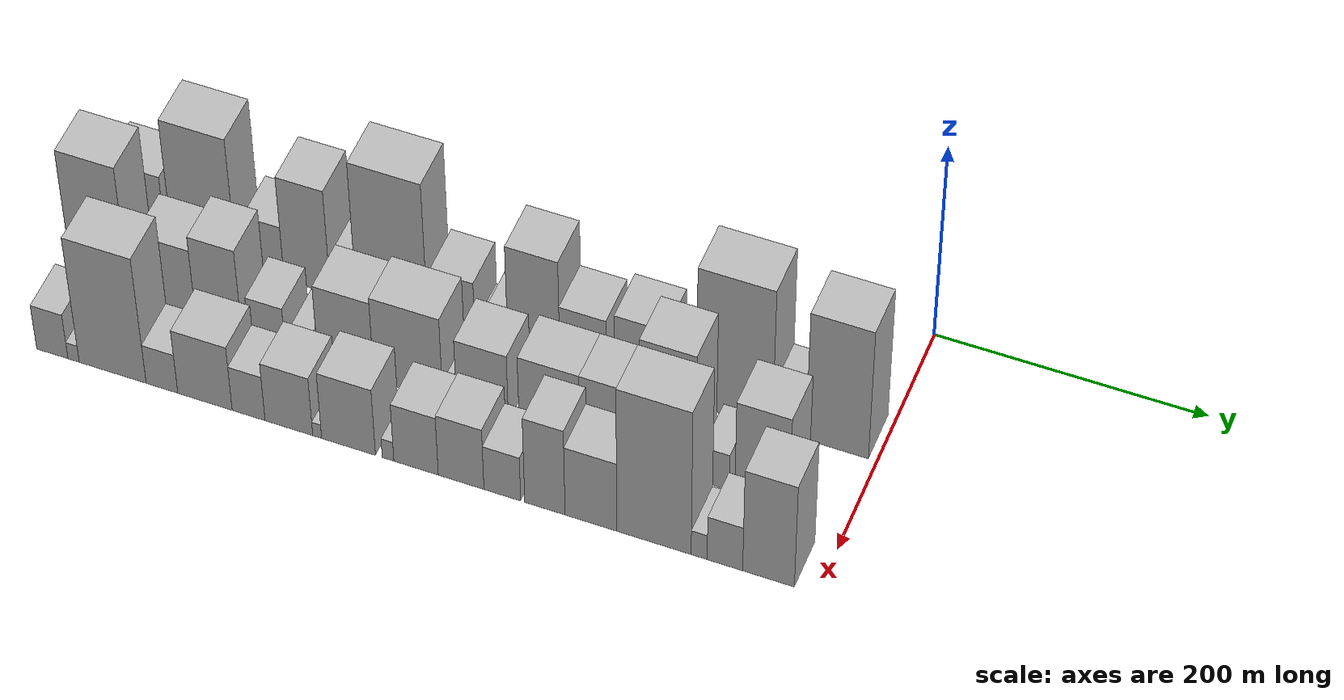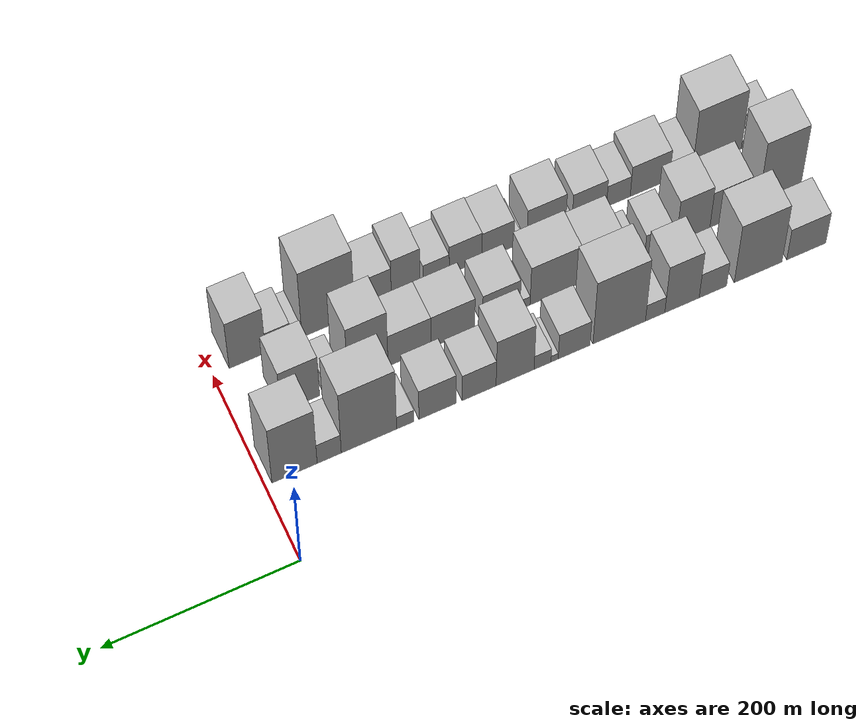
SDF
<sdf version="1.6">
 <world name="default">
  <model name="building_1">
   <static>1</static>
   <pose>100.0000 -556.5266 0 0.000000 0.000000 0.000000</pose>
   <link name="link">
    <pose>0 0 36.00 0 0 0</pose>
    <collision name="collision"><geometry><box><size>40.0000 40.9467 72.0000</size></box></geometry></collision>
    <visual name="visual">
     <cast_shadows>0</cast_shadows>
     <geometry><box><size>40.0000 40.9467 72.0000</size></box></geometry>
     <material>
      <script>
       <uri>model://HANNAS_wall/materials/scripts</uri>
       <uri>model://HANNAS_wall/materials/textures</uri>
       <name>vrc/HANNAS_wall</name>
      </script>
     </material>
    </visual>
   </link>
  </model>
  <model name="building_2">
   <static>1</static>
   <pose>100.0000 -506.0978 0 0.000000 0.000000 0.000000</pose>
   <link name="link">
    <pose>0 0 67.50 0 0 0</pose>
    <collision name="collision"><geometry><box><size>40.0000 49.9109 135.0000</size></box></geometry></collision>
    <visual name="visual">
     <cast_shadows>0</cast_shadows>
     <geometry><box><size>40.0000 49.9109 135.0000</size></box></geometry>
     <material>
      <script>
       <uri>model://HANNAS_wall/materials/scripts</uri>
       <uri>model://HANNAS_wall/materials/textures</uri>
       <name>vrc/HANNAS_wall</name>
      </script>
     </material>
    </visual>
   </link>
  </model>
  <model name="building_3">
   <static>1</static>
   <pose>100.0000 -458.8349 0 0.000000 0.000000 0.000000</pose>
   <link name="link">
    <pose>0 0 28.50 0 0 0</pose>
    <collision name="collision"><geometry><box><size>40.0000 28.6148 57.0000</size></box></geometry></collision>
    <visual name="visual">
     <cast_shadows>0</cast_shadows>
     <geometry><box><size>40.0000 28.6148 57.0000</size></box></geometry>
     <material>
      <script>
       <uri>model://HANNAS_wall/materials/scripts</uri>
       <uri>model://HANNAS_wall/materials/textures</uri>
       <name>vrc/HANNAS_wall</name>
      </script>
     </material>
    </visual>
   </link>
  </model>
  <model name="building_4">
   <static>1</static>
   <pose>100.0000 -426.6664 0 0.000000 0.000000 0.000000</pose>
   <link name="link">
    <pose>0 0 55.50 0 0 0</pose>
    <collision name="collision"><geometry><box><size>40.0000 35.7224 111.0000</size></box></geometry></collision>
    <visual name="visual">
     <cast_shadows>0</cast_shadows>
     <geometry><box><size>40.0000 35.7224 111.0000</size></box></geometry>
     <material>
      <script>
       <uri>model://HANNAS_wall/materials/scripts</uri>
       <uri>model://HANNAS_wall/materials/textures</uri>
       <name>vrc/HANNAS_wall</name>
      </script>
     </material>
    </visual>
   </link>
  </model>
  <model name="building_5">
   <static>1</static>
   <pose>100.0000 -398.7669 0 0.000000 0.000000 0.000000</pose>
   <link name="link">
    <pose>0 0 19.50 0 0 0</pose>
    <collision name="collision"><geometry><box><size>40.0000 20.0766 39.0000</size></box></geometry></collision>
    <visual name="visual">
     <cast_shadows>0</cast_shadows>
     <geometry><box><size>40.0000 20.0766 39.0000</size></box></geometry>
     <material>
      <script>
       <uri>model://HANNAS_wall/materials/scripts</uri>
       <uri>model://HANNAS_wall/materials/textures</uri>
       <name>vrc/HANNAS_wall</name>
      </script>
     </material>
    </visual>
   </link>
  </model>
  <model name="building_6">
   <static>1</static>
   <pose>100.0000 -361.5267 0 0.000000 0.000000 0.000000</pose>
   <link name="link">
    <pose>0 0 75.00 0 0 0</pose>
    <collision name="collision"><geometry><box><size>40.0000 54.4038 150.0000</size></box></geometry></collision>
    <visual name="visual">
     <cast_shadows>0</cast_shadows>
     <geometry><box><size>40.0000 54.4038 150.0000</size></box></geometry>
     <material>
      <script>
       <uri>model://HANNAS_wall/materials/scripts</uri>
       <uri>model://HANNAS_wall/materials/textures</uri>
       <name>vrc/HANNAS_wall</name>
      </script>
     </material>
    </visual>
   </link>
  </model>
  <model name="building_7">
   <static>1</static>
   <pose>100.0000 -314.9015 0 0.000000 0.000000 0.000000</pose>
   <link name="link">
    <pose>0 0 30.00 0 0 0</pose>
    <collision name="collision"><geometry><box><size>40.0000 32.8466 60.0000</size></box></geometry></collision>
    <visual name="visual">
     <cast_shadows>0</cast_shadows>
     <geometry><box><size>40.0000 32.8466 60.0000</size></box></geometry>
     <material>
      <script>
       <uri>model://HANNAS_wall/materials/scripts</uri>
       <uri>model://HANNAS_wall/materials/textures</uri>
       <name>vrc/HANNAS_wall</name>
      </script>
     </material>
    </visual>
   </link>
  </model>
  <model name="building_8">
   <static>1</static>
   <pose>100.0000 -294.7774 0 0.000000 0.000000 0.000000</pose>
   <link name="link">
    <pose>0 0 7.50 0 0 0</pose>
    <collision name="collision"><geometry><box><size>40.0000 7.4018 15.0000</size></box></geometry></collision>
    <visual name="visual">
     <cast_shadows>0</cast_shadows>
     <geometry><box><size>40.0000 7.4018 15.0000</size></box></geometry>
     <material>
      <script>
       <uri>model://HANNAS_wall/materials/scripts</uri>
       <uri>model://HANNAS_wall/materials/textures</uri>
       <name>vrc/HANNAS_wall</name>
      </script>
     </material>
    </visual>
   </link>
  </model>
  <model name="building_9">
   <static>1</static>
   <pose>100.0000 -282.3740 0 0.000000 0.000000 0.000000</pose>
   <link name="link">
    <pose>0 0 16.50 0 0 0</pose>
    <collision name="collision"><geometry><box><size>40.0000 17.4050 33.0000</size></box></geometry></collision>
    <visual name="visual">
     <cast_shadows>0</cast_shadows>
     <geometry><box><size>40.0000 17.4050 33.0000</size></box></geometry>
     <material>
      <script>
       <uri>model://HANNAS_wall/materials/scripts</uri>
       <uri>model://HANNAS_wall/materials/textures</uri>
       <name>vrc/HANNAS_wall</name>
      </script>
     </material>
    </visual>
   </link>
  </model>
  <model name="building_10">
   <static>1</static>
   <pose>100.0000 -254.1401 0 0.000000 0.000000 0.000000</pose>
   <link name="link">
    <pose>0 0 55.50 0 0 0</pose>
    <collision name="collision"><geometry><box><size>40.0000 39.0629 111.0000</size></box></geometry></collision>
    <visual name="visual">
     <cast_shadows>0</cast_shadows>
     <geometry><box><size>40.0000 39.0629 111.0000</size></box></geometry>
     <material>
      <script>
       <uri>model://HANNAS_wall/materials/scripts</uri>
       <uri>model://HANNAS_wall/materials/textures</uri>
       <name>vrc/HANNAS_wall</name>
      </script>
     </material>
    </visual>
   </link>
  </model>
  <model name="building_11">
   <static>1</static>
   <pose>100.0000 -217.1890 0 0.000000 0.000000 0.000000</pose>
   <link name="link">
    <pose>0 0 31.50 0 0 0</pose>
    <collision name="collision"><geometry><box><size>40.0000 34.8394 63.0000</size></box></geometry></collision>
    <visual name="visual">
     <cast_shadows>0</cast_shadows>
     <geometry><box><size>40.0000 34.8394 63.0000</size></box></geometry>
     <material>
      <script>
       <uri>model://HANNAS_wall/materials/scripts</uri>
       <uri>model://HANNAS_wall/materials/textures</uri>
       <name>vrc/HANNAS_wall</name>
      </script>
     </material>
    </visual>
   </link>
  </model>
  <model name="building_12">
   <static>1</static>
   <pose>100.0000 -174.7387 0 0.000000 0.000000 0.000000</pose>
   <link name="link">
    <pose>0 0 36.00 0 0 0</pose>
    <collision name="collision"><geometry><box><size>40.0000 38.0611 72.0000</size></box></geometry></collision>
    <visual name="visual">
     <cast_shadows>0</cast_shadows>
     <geometry><box><size>40.0000 38.0611 72.0000</size></box></geometry>
     <material>
      <script>
       <uri>model://HANNAS_wall/materials/scripts</uri>
       <uri>model://HANNAS_wall/materials/textures</uri>
       <name>vrc/HANNAS_wall</name>
      </script>
     </material>
    </visual>
   </link>
  </model>
  <model name="building_13">
   <static>1</static>
   <pose>100.0000 -141.8190 0 0.000000 0.000000 0.000000</pose>
   <link name="link">
    <pose>0 0 15.00 0 0 0</pose>
    <collision name="collision"><geometry><box><size>40.0000 17.7782 30.0000</size></box></geometry></collision>
    <visual name="visual">
     <cast_shadows>0</cast_shadows>
     <geometry><box><size>40.0000 17.7782 30.0000</size></box></geometry>
     <material>
      <script>
       <uri>model://HANNAS_wall/materials/scripts</uri>
       <uri>model://HANNAS_wall/materials/textures</uri>
       <name>vrc/HANNAS_wall</name>
      </script>
     </material>
    </visual>
   </link>
  </model>
  <model name="building_14">
   <static>1</static>
   <pose>100.0000 -104.8414 0 0.000000 0.000000 0.000000</pose>
   <link name="link">
    <pose>0 0 75.00 0 0 0</pose>
    <collision name="collision"><geometry><box><size>40.0000 56.1771 150.0000</size></box></geometry></collision>
    <visual name="visual">
     <cast_shadows>0</cast_shadows>
     <geometry><box><size>40.0000 56.1771 150.0000</size></box></geometry>
     <material>
      <script>
       <uri>model://HANNAS_wall/materials/scripts</uri>
       <uri>model://HANNAS_wall/materials/textures</uri>
       <name>vrc/HANNAS_wall</name>
      </script>
     </material>
    </visual>
   </link>
  </model>
  <model name="building_15">
   <static>1</static>
   <pose>100.0000 -64.5177 0 0.000000 0.000000 0.000000</pose>
   <link name="link">
    <pose>0 0 24.00 0 0 0</pose>
    <collision name="collision"><geometry><box><size>40.0000 24.4703 48.0000</size></box></geometry></collision>
    <visual name="visual">
     <cast_shadows>0</cast_shadows>
     <geometry><box><size>40.0000 24.4703 48.0000</size></box></geometry>
     <material>
      <script>
       <uri>model://HANNAS_wall/materials/scripts</uri>
       <uri>model://HANNAS_wall/materials/textures</uri>
       <name>vrc/HANNAS_wall</name>
      </script>
     </material>
    </visual>
   </link>
  </model>
  <model name="building_16">
   <static>1</static>
   <pose>100.0000 -29.4115 0 0.000000 0.000000 0.000000</pose>
   <link name="link">
    <pose>0 0 69.00 0 0 0</pose>
    <collision name="collision"><geometry><box><size>40.0000 45.7420 138.0000</size></box></geometry></collision>
    <visual name="visual">
     <cast_shadows>0</cast_shadows>
     <geometry><box><size>40.0000 45.7420 138.0000</size></box></geometry>
     <material>
      <script>
       <uri>model://HANNAS_wall/materials/scripts</uri>
       <uri>model://HANNAS_wall/materials/textures</uri>
       <name>vrc/HANNAS_wall</name>
      </script>
     </material>
    </visual>
   </link>
  </model>
  <model name="building_32">
   <static>1</static>
   <pose>160.0000 -557.7676 0 0.000000 0.000000 0.000000</pose>
   <link name="link">
    <pose>0 0 73.50 0 0 0</pose>
    <collision name="collision"><geometry><box><size>40.0000 44.4647 147.0000</size></box></geometry></collision>
    <visual name="visual">
     <cast_shadows>0</cast_shadows>
     <geometry><box><size>40.0000 44.4647 147.0000</size></box></geometry>
     <material>
      <script>
       <uri>model://HANNAS_wall/materials/scripts</uri>
       <uri>model://HANNAS_wall/materials/textures</uri>
       <name>vrc/HANNAS_wall</name>
      </script>
     </material>
    </visual>
   </link>
  </model>
  <model name="building_33">
   <static>1</static>
   <pose>160.0000 -505.2529 0 0.000000 0.000000 0.000000</pose>
   <link name="link">
    <pose>0 0 40.50 0 0 0</pose>
    <collision name="collision"><geometry><box><size>40.0000 40.5649 81.0000</size></box></geometry></collision>
    <visual name="visual">
     <cast_shadows>0</cast_shadows>
     <geometry><box><size>40.0000 40.5649 81.0000</size></box></geometry>
     <material>
      <script>
       <uri>model://HANNAS_wall/materials/scripts</uri>
       <uri>model://HANNAS_wall/materials/textures</uri>
       <name>vrc/HANNAS_wall</name>
      </script>
     </material>
    </visual>
   </link>
  </model>
  <model name="building_34">
   <static>1</static>
   <pose>160.0000 -467.3385 0 0.000000 0.000000 0.000000</pose>
   <link name="link">
    <pose>0 0 48.00 0 0 0</pose>
    <collision name="collision"><geometry><box><size>40.0000 35.2639 96.0000</size></box></geometry></collision>
    <visual name="visual">
     <cast_shadows>0</cast_shadows>
     <geometry><box><size>40.0000 35.2639 96.0000</size></box></geometry>
     <material>
      <script>
       <uri>model://HANNAS_wall/materials/scripts</uri>
       <uri>model://HANNAS_wall/materials/textures</uri>
       <name>vrc/HANNAS_wall</name>
      </script>
     </material>
    </visual>
   </link>
  </model>
  <model name="building_35">
   <static>1</static>
   <pose>160.0000 -430.7589 0 0.000000 0.000000 0.000000</pose>
   <link name="link">
    <pose>0 0 24.00 0 0 0</pose>
    <collision name="collision"><geometry><box><size>40.0000 27.8953 48.0000</size></box></geometry></collision>
    <visual name="visual">
     <cast_shadows>0</cast_shadows>
     <geometry><box><size>40.0000 27.8953 48.0000</size></box></geometry>
     <material>
      <script>
       <uri>model://HANNAS_wall/materials/scripts</uri>
       <uri>model://HANNAS_wall/materials/textures</uri>
       <name>vrc/HANNAS_wall</name>
      </script>
     </material>
    </visual>
   </link>
  </model>
  <model name="building_36">
   <static>1</static>
   <pose>160.0000 -403.3605 0 0.000000 0.000000 0.000000</pose>
   <link name="link">
    <pose>0 0 15.00 0 0 0</pose>
    <collision name="collision"><geometry><box><size>40.0000 16.9014 30.0000</size></box></geometry></collision>
    <visual name="visual">
     <cast_shadows>0</cast_shadows>
     <geometry><box><size>40.0000 16.9014 30.0000</size></box></geometry>
     <material>
      <script>
       <uri>model://HANNAS_wall/materials/scripts</uri>
       <uri>model://HANNAS_wall/materials/textures</uri>
       <name>vrc/HANNAS_wall</name>
      </script>
     </material>
    </visual>
   </link>
  </model>
  <model name="building_37">
   <static>1</static>
   <pose>160.0000 -370.7486 0 0.000000 0.000000 0.000000</pose>
   <link name="link">
    <pose>0 0 42.00 0 0 0</pose>
    <collision name="collision"><geometry><box><size>40.0000 42.3224 84.0000</size></box></geometry></collision>
    <visual name="visual">
     <cast_shadows>0</cast_shadows>
     <geometry><box><size>40.0000 42.3224 84.0000</size></box></geometry>
     <material>
      <script>
       <uri>model://HANNAS_wall/materials/scripts</uri>
       <uri>model://HANNAS_wall/materials/textures</uri>
       <name>vrc/HANNAS_wall</name>
      </script>
     </material>
    </visual>
   </link>
  </model>
  <model name="building_38">
   <static>1</static>
   <pose>160.0000 -323.6521 0 0.000000 0.000000 0.000000</pose>
   <link name="link">
    <pose>0 0 45.00 0 0 0</pose>
    <collision name="collision"><geometry><box><size>40.0000 51.8707 90.0000</size></box></geometry></collision>
    <visual name="visual">
     <cast_shadows>0</cast_shadows>
     <geometry><box><size>40.0000 51.8707 90.0000</size></box></geometry>
     <material>
      <script>
       <uri>model://HANNAS_wall/materials/scripts</uri>
       <uri>model://HANNAS_wall/materials/textures</uri>
       <name>vrc/HANNAS_wall</name>
      </script>
     </material>
    </visual>
   </link>
  </model>
  <model name="building_39">
   <static>1</static>
   <pose>160.0000 -292.5558 0 0.000000 0.000000 0.000000</pose>
   <link name="link">
    <pose>0 0 10.50 0 0 0</pose>
    <collision name="collision"><geometry><box><size>40.0000 10.3218 21.0000</size></box></geometry></collision>
    <visual name="visual">
     <cast_shadows>0</cast_shadows>
     <geometry><box><size>40.0000 10.3218 21.0000</size></box></geometry>
     <material>
      <script>
       <uri>model://HANNAS_wall/materials/scripts</uri>
       <uri>model://HANNAS_wall/materials/textures</uri>
       <name>vrc/HANNAS_wall</name>
      </script>
     </material>
    </visual>
   </link>
  </model>
  <model name="building_40">
   <static>1</static>
   <pose>160.0000 -268.0277 0 0.000000 0.000000 0.000000</pose>
   <link name="link">
    <pose>0 0 36.00 0 0 0</pose>
    <collision name="collision"><geometry><box><size>40.0000 38.7344 72.0000</size></box></geometry></collision>
    <visual name="visual">
     <cast_shadows>0</cast_shadows>
     <geometry><box><size>40.0000 38.7344 72.0000</size></box></geometry>
     <material>
      <script>
       <uri>model://HANNAS_wall/materials/scripts</uri>
       <uri>model://HANNAS_wall/materials/textures</uri>
       <name>vrc/HANNAS_wall</name>
      </script>
     </material>
    </visual>
   </link>
  </model>
  <model name="building_41">
   <static>1</static>
   <pose>160.0000 -218.2094 0 0.000000 0.000000 0.000000</pose>
   <link name="link">
    <pose>0 0 37.50 0 0 0</pose>
    <collision name="collision"><geometry><box><size>40.0000 44.9022 75.0000</size></box></geometry></collision>
    <visual name="visual">
     <cast_shadows>0</cast_shadows>
     <geometry><box><size>40.0000 44.9022 75.0000</size></box></geometry>
     <material>
      <script>
       <uri>model://HANNAS_wall/materials/scripts</uri>
       <uri>model://HANNAS_wall/materials/textures</uri>
       <name>vrc/HANNAS_wall</name>
      </script>
     </material>
    </visual>
   </link>
  </model>
  <model name="building_42">
   <static>1</static>
   <pose>160.0000 -173.7281 0 0.000000 0.000000 0.000000</pose>
   <link name="link">
    <pose>0 0 37.50 0 0 0</pose>
    <collision name="collision"><geometry><box><size>40.0000 44.0604 75.0000</size></box></geometry></collision>
    <visual name="visual">
     <cast_shadows>0</cast_shadows>
     <geometry><box><size>40.0000 44.0604 75.0000</size></box></geometry>
     <material>
      <script>
       <uri>model://HANNAS_wall/materials/scripts</uri>
       <uri>model://HANNAS_wall/materials/textures</uri>
       <name>vrc/HANNAS_wall</name>
      </script>
     </material>
    </visual>
   </link>
  </model>
  <model name="building_43">
   <static>1</static>
   <pose>160.0000 -131.1166 0 0.000000 0.000000 0.000000</pose>
   <link name="link">
    <pose>0 0 67.50 0 0 0</pose>
    <collision name="collision"><geometry><box><size>40.0000 41.1627 135.0000</size></box></geometry></collision>
    <visual name="visual">
     <cast_shadows>0</cast_shadows>
     <geometry><box><size>40.0000 41.1627 135.0000</size></box></geometry>
     <material>
      <script>
       <uri>model://HANNAS_wall/materials/scripts</uri>
       <uri>model://HANNAS_wall/materials/textures</uri>
       <name>vrc/HANNAS_wall</name>
      </script>
     </material>
    </visual>
   </link>
  </model>
  <model name="building_44">
   <static>1</static>
   <pose>160.0000 -95.7096 0 0.000000 0.000000 0.000000</pose>
   <link name="link">
    <pose>0 0 19.50 0 0 0</pose>
    <collision name="collision"><geometry><box><size>40.0000 19.6513 39.0000</size></box></geometry></collision>
    <visual name="visual">
     <cast_shadows>0</cast_shadows>
     <geometry><box><size>40.0000 19.6513 39.0000</size></box></geometry>
     <material>
      <script>
       <uri>model://HANNAS_wall/materials/scripts</uri>
       <uri>model://HANNAS_wall/materials/textures</uri>
       <name>vrc/HANNAS_wall</name>
      </script>
     </material>
    </visual>
   </link>
  </model>
  <model name="building_45">
   <static>1</static>
   <pose>160.0000 -62.0940 0 0.000000 0.000000 0.000000</pose>
   <link name="link">
    <pose>0 0 49.50 0 0 0</pose>
    <collision name="collision"><geometry><box><size>40.0000 39.5798 99.0000</size></box></geometry></collision>
    <visual name="visual">
     <cast_shadows>0</cast_shadows>
     <geometry><box><size>40.0000 39.5798 99.0000</size></box></geometry>
     <material>
      <script>
       <uri>model://HANNAS_wall/materials/scripts</uri>
       <uri>model://HANNAS_wall/materials/textures</uri>
       <name>vrc/HANNAS_wall</name>
      </script>
     </material>
    </visual>
   </link>
  </model>
  <model name="building_64">
   <static>1</static>
   <pose>220.0000 -567.9774 0 0.000000 0.000000 0.000000</pose>
   <link name="link">
    <pose>0 0 24.00 0 0 0</pose>
    <collision name="collision"><geometry><box><size>40.0000 24.0452 48.0000</size></box></geometry></collision>
    <visual name="visual">
     <cast_shadows>0</cast_shadows>
     <geometry><box><size>40.0000 24.0452 48.0000</size></box></geometry>
     <material>
      <script>
       <uri>model://HANNAS_wall/materials/scripts</uri>
       <uri>model://HANNAS_wall/materials/textures</uri>
       <name>vrc/HANNAS_wall</name>
      </script>
     </material>
    </visual>
   </link>
  </model>
  <model name="building_65">
   <static>1</static>
   <pose>220.0000 -551.6190 0 0.000000 0.000000 0.000000</pose>
   <link name="link">
    <pose>0 0 9.00 0 0 0</pose>
    <collision name="collision"><geometry><box><size>40.0000 8.6716 18.0000</size></box></geometry></collision>
    <visual name="visual">
     <cast_shadows>0</cast_shadows>
     <geometry><box><size>40.0000 8.6716 18.0000</size></box></geometry>
     <material>
      <script>
       <uri>model://HANNAS_wall/materials/scripts</uri>
       <uri>model://HANNAS_wall/materials/textures</uri>
       <name>vrc/HANNAS_wall</name>
      </script>
     </material>
    </visual>
   </link>
  </model>
  <model name="building_66">
   <static>1</static>
   <pose>220.0000 -521.6139 0 0.000000 0.000000 0.000000</pose>
   <link name="link">
    <pose>0 0 67.50 0 0 0</pose>
    <collision name="collision"><geometry><box><size>40.0000 51.3387 135.0000</size></box></geometry></collision>
    <visual name="visual">
     <cast_shadows>0</cast_shadows>
     <geometry><box><size>40.0000 51.3387 135.0000</size></box></geometry>
     <material>
      <script>
       <uri>model://HANNAS_wall/materials/scripts</uri>
       <uri>model://HANNAS_wall/materials/textures</uri>
       <name>vrc/HANNAS_wall</name>
      </script>
     </material>
    </visual>
   </link>
  </model>
  <model name="building_67">
   <static>1</static>
   <pose>220.0000 -483.8521 0 0.000000 0.000000 0.000000</pose>
   <link name="link">
    <pose>0 0 21.00 0 0 0</pose>
    <collision name="collision"><geometry><box><size>40.0000 24.1848 42.0000</size></box></geometry></collision>
    <visual name="visual">
     <cast_shadows>0</cast_shadows>
     <geometry><box><size>40.0000 24.1848 42.0000</size></box></geometry>
     <material>
      <script>
       <uri>model://HANNAS_wall/materials/scripts</uri>
       <uri>model://HANNAS_wall/materials/textures</uri>
       <name>vrc/HANNAS_wall</name>
      </script>
     </material>
    </visual>
   </link>
  </model>
  <model name="building_68">
   <static>1</static>
   <pose>220.0000 -451.1119 0 0.000000 0.000000 0.000000</pose>
   <link name="link">
    <pose>0 0 34.50 0 0 0</pose>
    <collision name="collision"><geometry><box><size>40.0000 41.2957 69.0000</size></box></geometry></collision>
    <visual name="visual">
     <cast_shadows>0</cast_shadows>
     <geometry><box><size>40.0000 41.2957 69.0000</size></box></geometry>
     <material>
      <script>
       <uri>model://HANNAS_wall/materials/scripts</uri>
       <uri>model://HANNAS_wall/materials/textures</uri>
       <name>vrc/HANNAS_wall</name>
      </script>
     </material>
    </visual>
   </link>
  </model>
  <model name="building_69">
   <static>1</static>
   <pose>220.0000 -418.0284 0 0.000000 0.000000 0.000000</pose>
   <link name="link">
    <pose>0 0 24.00 0 0 0</pose>
    <collision name="collision"><geometry><box><size>40.0000 24.8711 48.0000</size></box></geometry></collision>
    <visual name="visual">
     <cast_shadows>0</cast_shadows>
     <geometry><box><size>40.0000 24.8711 48.0000</size></box></geometry>
     <material>
      <script>
       <uri>model://HANNAS_wall/materials/scripts</uri>
       <uri>model://HANNAS_wall/materials/textures</uri>
       <name>vrc/HANNAS_wall</name>
      </script>
     </material>
    </visual>
   </link>
  </model>
  <model name="building_70">
   <static>1</static>
   <pose>220.0000 -387.6338 0 0.000000 0.000000 0.000000</pose>
   <link name="link">
    <pose>0 0 31.50 0 0 0</pose>
    <collision name="collision"><geometry><box><size>40.0000 35.9181 63.0000</size></box></geometry></collision>
    <visual name="visual">
     <cast_shadows>0</cast_shadows>
     <geometry><box><size>40.0000 35.9181 63.0000</size></box></geometry>
     <material>
      <script>
       <uri>model://HANNAS_wall/materials/scripts</uri>
       <uri>model://HANNAS_wall/materials/textures</uri>
       <name>vrc/HANNAS_wall</name>
      </script>
     </material>
    </visual>
   </link>
  </model>
  <model name="building_71">
   <static>1</static>
   <pose>220.0000 -366.3357 0 0.000000 0.000000 0.000000</pose>
   <link name="link">
    <pose>0 0 7.50 0 0 0</pose>
    <collision name="collision"><geometry><box><size>40.0000 6.6781 15.0000</size></box></geometry></collision>
    <visual name="visual">
     <cast_shadows>0</cast_shadows>
     <geometry><box><size>40.0000 6.6781 15.0000</size></box></geometry>
     <material>
      <script>
       <uri>model://HANNAS_wall/materials/scripts</uri>
       <uri>model://HANNAS_wall/materials/textures</uri>
       <name>vrc/HANNAS_wall</name>
      </script>
     </material>
    </visual>
   </link>
  </model>
  <model name="building_72">
   <static>1</static>
   <pose>220.0000 -342.8328 0 0.000000 0.000000 0.000000</pose>
   <link name="link">
    <pose>0 0 36.00 0 0 0</pose>
    <collision name="collision"><geometry><box><size>40.0000 40.3276 72.0000</size></box></geometry></collision>
    <visual name="visual">
     <cast_shadows>0</cast_shadows>
     <geometry><box><size>40.0000 40.3276 72.0000</size></box></geometry>
     <material>
      <script>
       <uri>model://HANNAS_wall/materials/scripts</uri>
       <uri>model://HANNAS_wall/materials/textures</uri>
       <name>vrc/HANNAS_wall</name>
      </script>
     </material>
    </visual>
   </link>
  </model>
  <model name="building_73">
   <static>1</static>
   <pose>220.0000 -313.3248 0 0.000000 0.000000 0.000000</pose>
   <link name="link">
    <pose>0 0 10.50 0 0 0</pose>
    <collision name="collision"><geometry><box><size>40.0000 8.6884 21.0000</size></box></geometry></collision>
    <visual name="visual">
     <cast_shadows>0</cast_shadows>
     <geometry><box><size>40.0000 8.6884 21.0000</size></box></geometry>
     <material>
      <script>
       <uri>model://HANNAS_wall/materials/scripts</uri>
       <uri>model://HANNAS_wall/materials/textures</uri>
       <name>vrc/HANNAS_wall</name>
      </script>
     </material>
    </visual>
   </link>
  </model>
  <model name="building_74">
   <static>1</static>
   <pose>220.0000 -292.4663 0 0.000000 0.000000 0.000000</pose>
   <link name="link">
    <pose>0 0 31.50 0 0 0</pose>
    <collision name="collision"><geometry><box><size>40.0000 33.0287 63.0000</size></box></geometry></collision>
    <visual name="visual">
     <cast_shadows>0</cast_shadows>
     <geometry><box><size>40.0000 33.0287 63.0000</size></box></geometry>
     <material>
      <script>
       <uri>model://HANNAS_wall/materials/scripts</uri>
       <uri>model://HANNAS_wall/materials/textures</uri>
       <name>vrc/HANNAS_wall</name>
      </script>
     </material>
    </visual>
   </link>
  </model>
  <model name="building_75">
   <static>1</static>
   <pose>220.0000 -259.0365 0 0.000000 0.000000 0.000000</pose>
   <link name="link">
    <pose>0 0 33.00 0 0 0</pose>
    <collision name="collision"><geometry><box><size>40.0000 33.8308 66.0000</size></box></geometry></collision>
    <visual name="visual">
     <cast_shadows>0</cast_shadows>
     <geometry><box><size>40.0000 33.8308 66.0000</size></box></geometry>
     <material>
      <script>
       <uri>model://HANNAS_wall/materials/scripts</uri>
       <uri>model://HANNAS_wall/materials/textures</uri>
       <name>vrc/HANNAS_wall</name>
      </script>
     </material>
    </visual>
   </link>
  </model>
  <model name="building_76">
   <static>1</static>
   <pose>220.0000 -228.6022 0 0.000000 0.000000 0.000000</pose>
   <link name="link">
    <pose>0 0 24.00 0 0 0</pose>
    <collision name="collision"><geometry><box><size>40.0000 27.0378 48.0000</size></box></geometry></collision>
    <visual name="visual">
     <cast_shadows>0</cast_shadows>
     <geometry><box><size>40.0000 27.0378 48.0000</size></box></geometry>
     <material>
      <script>
       <uri>model://HANNAS_wall/materials/scripts</uri>
       <uri>model://HANNAS_wall/materials/textures</uri>
       <name>vrc/HANNAS_wall</name>
      </script>
     </material>
    </visual>
   </link>
  </model>
  <model name="building_77">
   <static>1</static>
   <pose>220.0000 -197.2982 0 0.000000 0.000000 0.000000</pose>
   <link name="link">
    <pose>0 0 46.50 0 0 0</pose>
    <collision name="collision"><geometry><box><size>40.0000 29.5703 93.0000</size></box></geometry></collision>
    <visual name="visual">
     <cast_shadows>0</cast_shadows>
     <geometry><box><size>40.0000 29.5703 93.0000</size></box></geometry>
     <material>
      <script>
       <uri>model://HANNAS_wall/materials/scripts</uri>
       <uri>model://HANNAS_wall/materials/textures</uri>
       <name>vrc/HANNAS_wall</name>
      </script>
     </material>
    </visual>
   </link>
  </model>
  <model name="building_78">
   <static>1</static>
   <pose>220.0000 -163.5725 0 0.000000 0.000000 0.000000</pose>
   <link name="link">
    <pose>0 0 37.50 0 0 0</pose>
    <collision name="collision"><geometry><box><size>40.0000 37.8811 75.0000</size></box></geometry></collision>
    <visual name="visual">
     <cast_shadows>0</cast_shadows>
     <geometry><box><size>40.0000 37.8811 75.0000</size></box></geometry>
     <material>
      <script>
       <uri>model://HANNAS_wall/materials/scripts</uri>
       <uri>model://HANNAS_wall/materials/textures</uri>
       <name>vrc/HANNAS_wall</name>
      </script>
     </material>
    </visual>
   </link>
  </model>
  <model name="building_79">
   <static>1</static>
   <pose>220.0000 -117.6859 0 0.000000 0.000000 0.000000</pose>
   <link name="link">
    <pose>0 0 78.00 0 0 0</pose>
    <collision name="collision"><geometry><box><size>40.0000 53.8920 156.0000</size></box></geometry></collision>
    <visual name="visual">
     <cast_shadows>0</cast_shadows>
     <geometry><box><size>40.0000 53.8920 156.0000</size></box></geometry>
     <material>
      <script>
       <uri>model://HANNAS_wall/materials/scripts</uri>
       <uri>model://HANNAS_wall/materials/textures</uri>
       <name>vrc/HANNAS_wall</name>
      </script>
     </material>
    </visual>
   </link>
  </model>
  <model name="building_80">
   <static>1</static>
   <pose>220.0000 -84.9655 0 0.000000 0.000000 0.000000</pose>
   <link name="link">
    <pose>0 0 13.50 0 0 0</pose>
    <collision name="collision"><geometry><box><size>40.0000 11.5490 27.0000</size></box></geometry></collision>
    <visual name="visual">
     <cast_shadows>0</cast_shadows>
     <geometry><box><size>40.0000 11.5490 27.0000</size></box></geometry>
     <material>
      <script>
       <uri>model://HANNAS_wall/materials/scripts</uri>
       <uri>model://HANNAS_wall/materials/textures</uri>
       <name>vrc/HANNAS_wall</name>
      </script>
     </material>
    </visual>
   </link>
  </model>
  <model name="building_81">
   <static>1</static>
   <pose>220.0000 -66.4112 0 0.000000 0.000000 0.000000</pose>
   <link name="link">
    <pose>0 0 24.00 0 0 0</pose>
    <collision name="collision"><geometry><box><size>40.0000 25.5596 48.0000</size></box></geometry></collision>
    <visual name="visual">
     <cast_shadows>0</cast_shadows>
     <geometry><box><size>40.0000 25.5596 48.0000</size></box></geometry>
     <material>
      <script>
       <uri>model://HANNAS_wall/materials/scripts</uri>
       <uri>model://HANNAS_wall/materials/textures</uri>
       <name>vrc/HANNAS_wall</name>
      </script>
     </material>
    </visual>
   </link>
  </model>
  <model name="building_82">
   <static>1</static>
   <pose>220.0000 -35.0453 0 0.000000 0.000000 0.000000</pose>
   <link name="link">
    <pose>0 0 55.50 0 0 0</pose>
    <collision name="collision"><geometry><box><size>40.0000 37.1722 111.0000</size></box></geometry></collision>
    <visual name="visual">
     <cast_shadows>0</cast_shadows>
     <geometry><box><size>40.0000 37.1722 111.0000</size></box></geometry>
     <material>
      <script>
       <uri>model://HANNAS_wall/materials/scripts</uri>
       <uri>model://HANNAS_wall/materials/textures</uri>
       <name>vrc/HANNAS_wall</name>
      </script>
     </material>
    </visual>
   </link>
  </model>
 </world>
</sdf>
